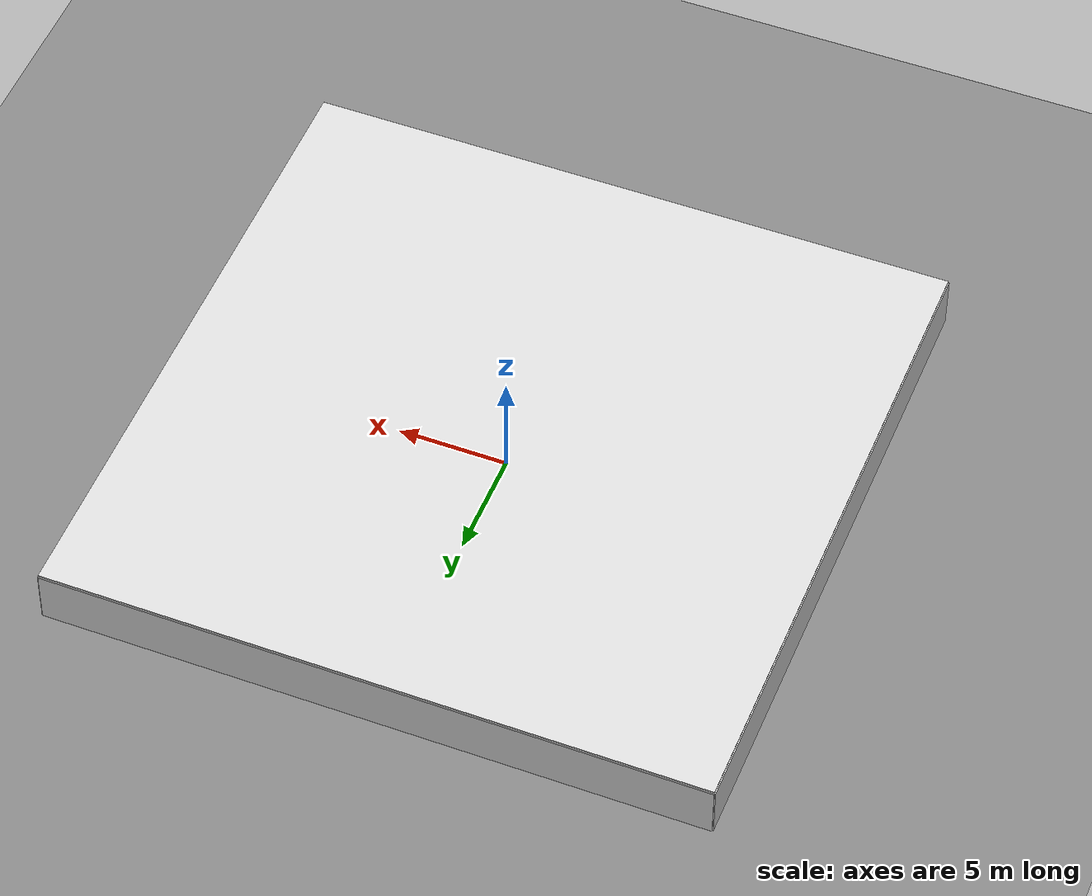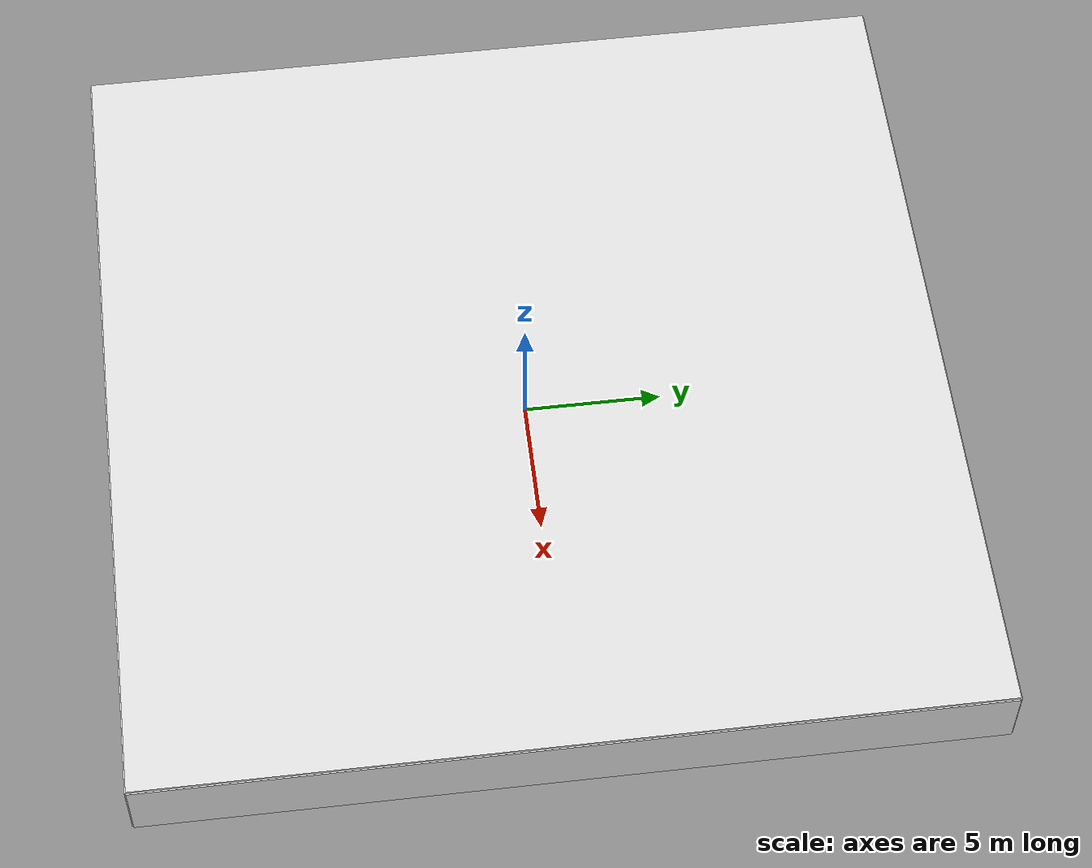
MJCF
<mujoco model="scene">

  <visual>
    <headlight diffuse="0.6 0.6 0.6" ambient="0.3 0.3 0.3" specular="0 0 0"/>
    <rgba haze="0.871 0.616 0.4 0.5"/>
    <global azimuth="-130" elevation="-20"/>
  </visual>

  <asset>
    <texture builtin="gradient" height="100" rgb1="0.9 0.9 0.9" rgb2="0.55 0.25 0.0" type="skybox" width="100"/>
    <include file="../../room/objects/materials.xml"/>
  </asset>

    <worldbody>
        <geom name="floor" friction="1 .1 .1" pos="0 0 0" size="0 0 0.125" type="plane" material="mat_floor" condim="3" conaffinity="1" contype="1" group="2"/>
        <light cutoff="1000" diffuse="1.5 1.5 1.5" dir="-0 0 -1.3" directional="true" exponent="10" pos="0 0 10.3" specular=".1 .1 .1" castshadow="false"/>

        <geom name="wall_negx" type="box" pos="-15.0 0.0 1.25" size="0.05 15.0 1.25" material="mat_wall"/>
        <geom name="wall_posx" type="box" pos=" 15.0 0.0 1.25" size="0.05 15.0 1.25" material="mat_wall"/>
        <geom name="wall_negy" type="box" pos="0.0 -15.0 1.25" size="15.0 0.05 1.25" material="mat_wall"/>
        <geom name="wall_posy" type="box" pos="0.0  15.0 1.25" size="15.0 0.05 1.25" material="mat_wall"/>

        <geom name="ceiling" type="box"
          pos="0 0 2.55"
          size="15.0 15.0 0.05"
          material="mat_wall"
          contype="1" conaffinity="1"
        />

        <!-- SCENARIO: chair_10 -->
        <!-- TARGET_BODY_NAME: chair_target -->
        <!-- LAYOUT: target=chair, distance=far, side=left, difficulty=hard -->

        <!-- TARGET: chair -->
        <body name="chair_target" pos="6.9092 1.1573 0.0" euler="0 0 1.6058">
          <include file="../../room/objects/chair.xml"/>
        </body>

        <!-- OBSTRUCTOR: trash_can -->
        <body name="trash_can_obstructor1" pos="3.7682 0.8193 0.0" euler="0 0 0.5086">
          <include file="../../room/objects/trash_can.xml"/>
        </body>

        <!-- DISTRACTOR: bookshelf -->
        <body name="bookshelf_distractor1" pos="2.4991 1.6508 0.0" euler="0 0 1.0572">
          <include file="../../room/objects/bookshelf.xml"/>
        </body>
        <!-- DISTRACTOR: table -->
        <body name="table_distractor2" pos="6.3191 2.0867 0.0" euler="0 0 1.6608">
          <include file="../../room/objects/table.xml"/>
        </body>
    </worldbody>
</mujoco>

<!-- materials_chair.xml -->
<mujoco>
  <texture name="tex_wood_chair" type="2d" file="oak_veneer_01_diff_2k.png"/>
  <material name="mat_wood_chair"
            texture="tex_wood_chair"
            texrepeat="1.2 1.2"
            texuniform="true"
            rgba="1 1 1 1"
            specular="0.22"
            shininess="0.35"
            reflectance="0.04"/>
</mujoco>

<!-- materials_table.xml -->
<mujoco>
  <texture name="tex_wood_table" type="2d" file="wood_table_001_diff_2k.png"/>
  <material name="mat_wood_table"
            texture="tex_wood_table"
            texrepeat="1.2 1.2"
            texuniform="true"
            rgba="1 1 1 1"
            specular="0.22"
            shininess="0.35"
            reflectance="0.04"/>
</mujoco>

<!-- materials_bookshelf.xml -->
<mujoco>
  <texture name="tex_bookshelf_wood"
           type="2d"
           file="oak_veneer_01_diff_2k.png"/>

  <material name="mat_wood_bookshelf"
            texture="tex_bookshelf_wood"
            texrepeat="1.2 1.2"
            texuniform="true"
            rgba="1 1 1 1"
            specular="0.22"
            shininess="0.35"
            reflectance="0.04"/>
</mujoco>

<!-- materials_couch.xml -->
<mujoco>
  <texture name="tex_wood_couch" type="2d" file="wood_table_001_diff_2k.png"/>
  <material name="mat_wood_couch"
            texture="tex_wood_couch"
            texrepeat="1.2 1.2"
            texuniform="true"
            rgba="1 1 1 1"
            specular="0.22"
            shininess="0.35"
            reflectance="0.04"/>

  <texture name="tex_fabric" type="2d" file="rough_linen_diff_2k.png"/>
  <material name="mat_fabric"
            texture="tex_fabric"
            texrepeat="1.2 1.2"
            texuniform="true"
            rgba="1 1 1 1"
            specular="0.10"
            shininess="0.08"
            reflectance="0.01"/>
</mujoco>

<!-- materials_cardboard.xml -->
<mujoco>
  <texture name="tex_cardboard" type="2d" file="cardboard.png"/>
  <material name="mat_cardboard"
            texture="tex_cardboard"
            texrepeat="1.2 1.2"
            texuniform="true"
            rgba="1 1 1 1"
            specular="0.10"
            shininess="0.08"
            reflectance="0.01"/>
</mujoco>

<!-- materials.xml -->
<mujoco>
  <material name="mat_wall" rgba="0.85 0.85 0.85 1"/>
  <include file="materials_chair.xml"/>

  <include file="materials_table.xml"/>

  <include file="materials_bookshelf.xml"/>
  <material name="mat_book_red" rgba="0.70 0.18 0.16 1"/>
  <material name="mat_book_blue" rgba="0.16 0.31 0.62 1"/>
  <material name="mat_book_green" rgba="0.22 0.45 0.24 1"/>
  <material name="mat_book_yellow" rgba="0.78 0.66 0.22 1"/>
  <material name="mat_book_dark" rgba="0.20 0.18 0.17 1"/>

  <include file="materials_couch.xml"/>
  <include file="materials_cardboard.xml"/>

  <texture name="tex_metal" type="2d" file="metal.png"/>
  <material name="mat_metal" texture="tex_metal" texrepeat="2 2" reflectance="0.3"/>
  <material name="mat_trash_can_dark_green"
            texture="tex_metal"
            texrepeat="2 2"
            rgba="0.10 0.18 0.12 1"
            specular="0.18"
            shininess="0.20"
            reflectance="0.02"/>

  <texture name="tex_floor" type="2d" builtin="checker" width="512" height="512"
           rgb1="0.55 0.55 0.55" rgb2="0.50 0.50 0.50"/>
  <material name="mat_floor" texture="tex_floor" texrepeat="4 4" reflectance="0.00"/>

</mujoco>

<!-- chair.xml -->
<mujoco>
  <body>
    <!-- seat frame and seat board -->
    <geom name="chair_seat_top" type="box"
          pos="0 0 0.43" size="0.24 0.22 0.018"
          material="mat_wood_chair"/>
    <geom name="chair_helper_front" type="box"
          pos="0 0.185 0.185" size="0.187 0.012 0.185"
          rgba="0 0 0 0"/>
    <geom name="chair_helper_back" type="box"
          pos="0 -0.185 0.185" size="0.187 0.012 0.185"
          rgba="0 0 0 0"/>
    <geom name="chair_helper_left" type="box"
          pos="-0.205 0 0.185" size="0.012 0.167 0.185"
          rgba="0 0 0 0"/>
    <geom name="chair_helper_right" type="box"
          pos="0.205 0 0.185" size="0.012 0.167 0.185"
          rgba="0 0 0 0"/>
    <geom name="chair_seat_apron_front" type="box"
          pos="0 0.195 0.385" size="0.21 0.015 0.028"
          material="mat_wood_chair"/>
    <geom name="chair_seat_apron_back" type="box"
          pos="0 -0.195 0.385" size="0.21 0.015 0.028"
          material="mat_wood_chair"/>
    <geom name="chair_seat_apron_left" type="box"
          pos="-0.225 0 0.385" size="0.015 0.18 0.028"
          material="mat_wood_chair"/>
    <geom name="chair_seat_apron_right" type="box"
          pos="0.225 0 0.385" size="0.015 0.18 0.028"
          material="mat_wood_chair"/>

    <!-- front legs -->
    <geom name="chair_leg_fl" type="box"
          pos="-0.205 0.185 0.195" size="0.018 0.018 0.195"
          material="mat_wood_chair"/>
    <geom name="chair_leg_fr" type="box"
          pos="0.205 0.185 0.195" size="0.018 0.018 0.195"
          material="mat_wood_chair"/>

    <!-- rear legs extend upward into the backrest posts -->
    <geom name="chair_leg_rl" type="box"
          pos="-0.205 -0.185 0.365" size="0.019 0.019 0.535"
          material="mat_wood_chair"/>
    <geom name="chair_leg_rr" type="box"
          pos="0.205 -0.185 0.365" size="0.019 0.019 0.535"
          material="mat_wood_chair"/>

    <!-- lower stretchers -->
    <geom name="chair_stretcher_front" type="box"
          pos="0 0.185 0.165" size="0.187 0.012 0.012"
          material="mat_wood_chair"/>
    <geom name="chair_stretcher_back" type="box"
          pos="0 -0.185 0.165" size="0.187 0.012 0.012"
          material="mat_wood_chair"/>
    <geom name="chair_stretcher_left" type="box"
          pos="-0.205 0 0.150" size="0.012 0.185 0.012"
          material="mat_wood_chair"/>
    <geom name="chair_stretcher_right" type="box"
          pos="0.205 0 0.150" size="0.012 0.185 0.012"
          material="mat_wood_chair"/>

    <!-- backrest frame -->
    <geom name="chair_back_top" type="box"
          pos="0 -0.185 0.865" size="0.18 0.016 0.022"
          material="mat_wood_chair"/>
    <geom name="chair_back_mid" type="box"
          pos="0 -0.178 0.710" size="0.155 0.013 0.018"
          material="mat_wood_chair"/>

    <!-- vertical back slats -->
    <geom name="chair_back_slat_l" type="box"
          pos="-0.085 -0.175 0.565" size="0.014 0.010 0.160"
          material="mat_wood_chair"/>
    <geom name="chair_back_slat_c" type="box"
          pos="0 -0.175 0.565" size="0.014 0.010 0.160"
          material="mat_wood_chair"/>
    <geom name="chair_back_slat_r" type="box"
          pos="0.085 -0.175 0.565" size="0.014 0.010 0.160"
          material="mat_wood_chair"/>
  </body>
</mujoco>

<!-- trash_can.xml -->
<mujoco>
  <body>
    <!-- bottom foot ring -->
    <geom name="trash_can_base_ring" type="cylinder"
          pos="0 0 0.020" size="0.115 0.020"
          material="mat_trash_can_dark_green"/>

    <!-- main body -->
    <geom name="trash_can_body" type="cylinder"
          pos="0 0 0.155" size="0.138 0.135"
          material="mat_trash_can_dark_green"/>

    <!-- upper collar -->
    <geom name="trash_can_upper_band" type="cylinder"
          pos="0 0 0.265" size="0.152 0.016"
          material="mat_trash_can_dark_green"/>

    <!-- rolled top rim -->
    <geom name="trash_can_rim" type="cylinder"
          pos="0 0 0.292" size="0.168 0.010"
          material="mat_trash_can_dark_green"/>

    <!-- inset inner lip for a more finished opening -->
    <geom name="trash_can_inner_lip" type="cylinder"
          pos="0 0 0.276" size="0.126 0.008"
          material="mat_trash_can_dark_green"/>
  </body>
</mujoco>

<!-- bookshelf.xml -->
<mujoco>
  <body name="bookshelf" pos="0 0 0">
      <!-- Outer carcass -->
      <geom name="bookshelf_left_panel" type="box"
            pos="-0.285 0 0.54" size="0.025 0.12 0.54"
            material="mat_wood_bookshelf"/>

      <geom name="bookshelf_right_panel" type="box"
            pos="0.285 0 0.54" size="0.025 0.12 0.54"
            material="mat_wood_bookshelf"/>

      <geom name="bookshelf_bottom_panel" type="box"
            pos="0 0 0.035" size="0.285 0.12 0.035"
            material="mat_wood_bookshelf"/>

      <geom name="bookshelf_top_panel" type="box"
            pos="0 0 1.045" size="0.285 0.12 0.035"
            material="mat_wood_bookshelf"/>

      <!-- invisible collision panels to keep objects inside the shelf -->
      <geom name="bookshelf_front_collision" type="box"
            pos="0 -0.130 0.54" size="0.270 0.012 0.50"
            rgba="0 0 0 0"/>
      <geom name="bookshelf_back_collision" type="box"
            pos="0 0.130 0.54" size="0.270 0.012 0.50"
            rgba="0 0 0 0"/>

      <!-- interior shelves -->
      <geom name="bookshelf_shelf_1" type="box"
            pos="0 0.01 0.29" size="0.255 0.10 0.030"
            material="mat_wood_bookshelf"/>
      <geom name="book_s1_a" type="box"
            pos="-0.18 0.00 0.355" size="0.022 0.070 0.065"
            material="mat_book_red"/>
      <geom name="book_s1_b" type="box"
            pos="-0.12 0.00 0.345" size="0.018 0.070 0.055"
            material="mat_book_blue"/>
      <geom name="book_s1_c" type="box"
            pos="-0.07 0.00 0.360" size="0.020 0.070 0.070"
            material="mat_book_green"/>
      <geom name="book_s1_d" type="box"
            pos="0.02 0.00 0.350" size="0.024 0.070 0.060"
            material="mat_book_yellow"/>
      <geom name="book_s1_e" type="box"
            pos="0.08 0.00 0.340" size="0.018 0.070 0.050"
            material="mat_book_dark"/>
      <geom name="book_s1_f" type="box"
            pos="0.18 0.00 0.355" size="0.026 0.070 0.065"
            material="mat_book_blue"/>

      <geom name="bookshelf_shelf_2" type="box"
            pos="0 0.01 0.56" size="0.255 0.10 0.030"
            material="mat_wood_bookshelf"/>
      <geom name="book_s2_a" type="box"
            pos="-0.20 0.00 0.620" size="0.020 0.070 0.050"
            material="mat_book_green"/>
      <geom name="book_s2_b" type="box"
            pos="-0.15 0.00 0.635" size="0.016 0.070 0.065"
            material="mat_book_red"/>
      <geom name="book_s2_c" type="box"
            pos="-0.10 0.00 0.628" size="0.021 0.070 0.058"
            material="mat_book_dark"/>
      <geom name="book_s2_d" type="box"
            pos="0.04 0.00 0.640" size="0.028 0.070 0.070"
            material="mat_book_blue"/>
      <geom name="book_s2_e" type="box"
            pos="0.11 0.00 0.622" size="0.018 0.070 0.052"
            material="mat_book_yellow"/>
      <geom name="book_s2_f" type="box"
            pos="0.17 0.00 0.632" size="0.022 0.070 0.062"
            material="mat_book_red"/>

      <geom name="bookshelf_shelf_3" type="box"
            pos="0 0.01 0.83" size="0.255 0.10 0.030"
            material="mat_wood_bookshelf"/>
      <geom name="book_s3_a" type="box"
            pos="-0.19 0.00 0.895" size="0.018 0.070 0.065"
            material="mat_book_yellow"/>
      <geom name="book_s3_b" type="box"
            pos="-0.14 0.00 0.885" size="0.022 0.070 0.055"
            material="mat_book_blue"/>
      <geom name="book_s3_c" type="box"
            pos="-0.08 0.00 0.900" size="0.020 0.070 0.070"
            material="mat_book_green"/>
      <geom name="book_s3_d" type="box"
            pos="0.00 0.00 0.890" size="0.026 0.070 0.060"
            material="mat_book_red"/>
      <geom name="book_s3_e" type="box"
            pos="0.10 0.00 0.882" size="0.018 0.070 0.052"
            material="mat_book_dark"/>
      <geom name="book_s3_f" type="box"
            pos="0.17 0.00 0.892" size="0.024 0.070 0.062"
            material="mat_book_green"/>

      <!-- front face frame -->
      <geom name="bookshelf_front_left_stile" type="box"
            pos="-0.268 -0.108 0.54" size="0.012 0.010 0.54"
            material="mat_wood_bookshelf"/>

      <geom name="bookshelf_front_right_stile" type="box"
            pos="0.268 -0.108 0.54" size="0.012 0.010 0.54"
            material="mat_wood_bookshelf"/>

      <geom name="bookshelf_front_top_rail" type="box"
            pos="0 -0.108 1.03" size="0.255 0.010 0.012"
            material="mat_wood_bookshelf"/>

      <geom name="bookshelf_front_mid_rail_1" type="box"
            pos="0 -0.108 0.81" size="0.255 0.010 0.010"
            material="mat_wood_bookshelf"/>

      <geom name="bookshelf_front_mid_rail_2" type="box"
            pos="0 -0.108 0.54" size="0.255 0.010 0.010"
            material="mat_wood_bookshelf"/>

      <geom name="bookshelf_front_bottom_rail" type="box"
            pos="0 -0.108 0.05" size="0.255 0.010 0.014"
            material="mat_wood_bookshelf"/>

      <!-- feet -->
      <geom name="bookshelf_left_foot" type="box"
            pos="-0.22 -0.06 0.008" size="0.04 0.04 0.008"
            material="mat_wood_bookshelf"/>

      <geom name="bookshelf_right_foot" type="box"
            pos="0.22 -0.06 0.008" size="0.04 0.04 0.008"
            material="mat_wood_bookshelf"/>
  </body>
</mujoco>

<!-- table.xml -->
<mujoco>
  <body>
    <!-- tabletop -->
    <geom name="table_top" type="box"
          pos="0 0 0.595" size="0.62 0.42 0.035"
          material="mat_wood_table"/>
    <geom name="table_helper_front" type="box"
          pos="0 0.295 0.275" size="0.450 0.012 0.275"
          rgba="0 0 0 0"/>
    <geom name="table_helper_back" type="box"
          pos="0 -0.295 0.275" size="0.450 0.012 0.275"
          rgba="0 0 0 0"/>
    <geom name="table_helper_left" type="box"
          pos="-0.515 0 0.275" size="0.012 0.245 0.275"
          rgba="0 0 0 0"/>
    <geom name="table_helper_right" type="box"
          pos="0.515 0 0.275" size="0.012 0.245 0.275"
          rgba="0 0 0 0"/>
    <geom name="table_top_bevel_front" type="box"
          pos="0 0.395 0.555" size="0.58 0.012 0.012"
          material="mat_wood_table"/>
    <geom name="table_top_bevel_back" type="box"
          pos="0 -0.395 0.555" size="0.58 0.012 0.012"
          material="mat_wood_table"/>
    <geom name="table_top_bevel_left" type="box"
          pos="-0.595 0 0.555" size="0.012 0.36 0.012"
          material="mat_wood_table"/>
    <geom name="table_top_bevel_right" type="box"
          pos="0.595 0 0.555" size="0.012 0.36 0.012"
          material="mat_wood_table"/>

    <!-- apron -->
    <geom name="table_apron_front" type="box"
          pos="0 0.335 0.515" size="0.53 0.025 0.045"
          material="mat_wood_table"/>
    <geom name="table_apron_back" type="box"
          pos="0 -0.335 0.515" size="0.53 0.025 0.045"
          material="mat_wood_table"/>
    <geom name="table_apron_left" type="box"
          pos="-0.535 0 0.515" size="0.025 0.29 0.045"
          material="mat_wood_table"/>
    <geom name="table_apron_right" type="box"
          pos="0.535 0 0.515" size="0.025 0.29 0.045"
          material="mat_wood_table"/>

    <!-- legs -->
    <geom name="table_leg_fl" type="box"
          pos="0.515 0.295 0.255" size="0.032 0.032 0.255"
          material="mat_wood_table"/>
    <geom name="table_leg_fr" type="box"
          pos="0.515 -0.295 0.255" size="0.032 0.032 0.255"
          material="mat_wood_table"/>
    <geom name="table_leg_rl" type="box"
          pos="-0.515 0.295 0.255" size="0.032 0.032 0.255"
          material="mat_wood_table"/>
    <geom name="table_leg_rr" type="box"
          pos="-0.515 -0.295 0.255" size="0.032 0.032 0.255"
          material="mat_wood_table"/>

    <!-- lower stretchers -->
    <geom name="table_stretcher_left" type="box"
          pos="-0.515 0 0.105" size="0.015 0.295 0.015"
          material="mat_wood_table"/>
    <geom name="table_stretcher_right" type="box"
          pos="0.515 0 0.105" size="0.015 0.295 0.015"
          material="mat_wood_table"/>
    <geom name="table_stretcher_front" type="box"
          pos="0 0.295 0.120" size="0.515 0.015 0.015"
          material="mat_wood_table"/>
    <geom name="table_stretcher_back" type="box"
          pos="0 -0.295 0.120" size="0.515 0.015 0.015"
          material="mat_wood_table"/>

  </body>
</mujoco>
